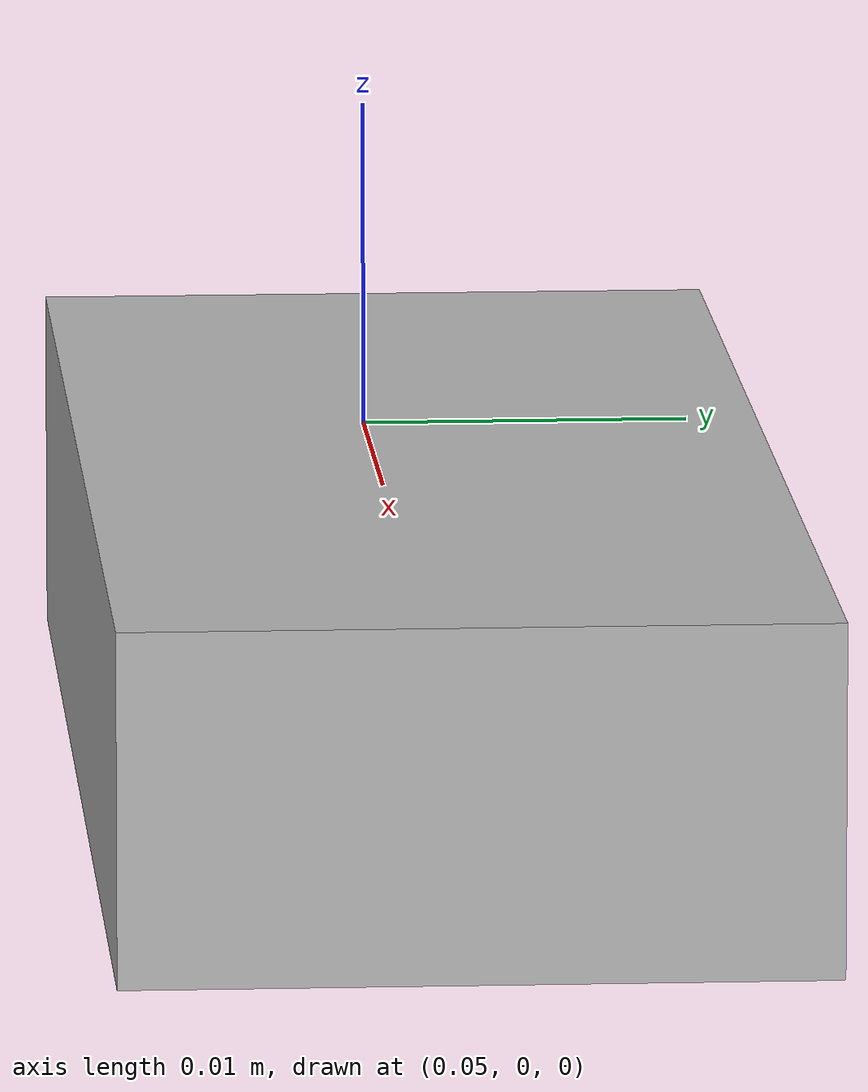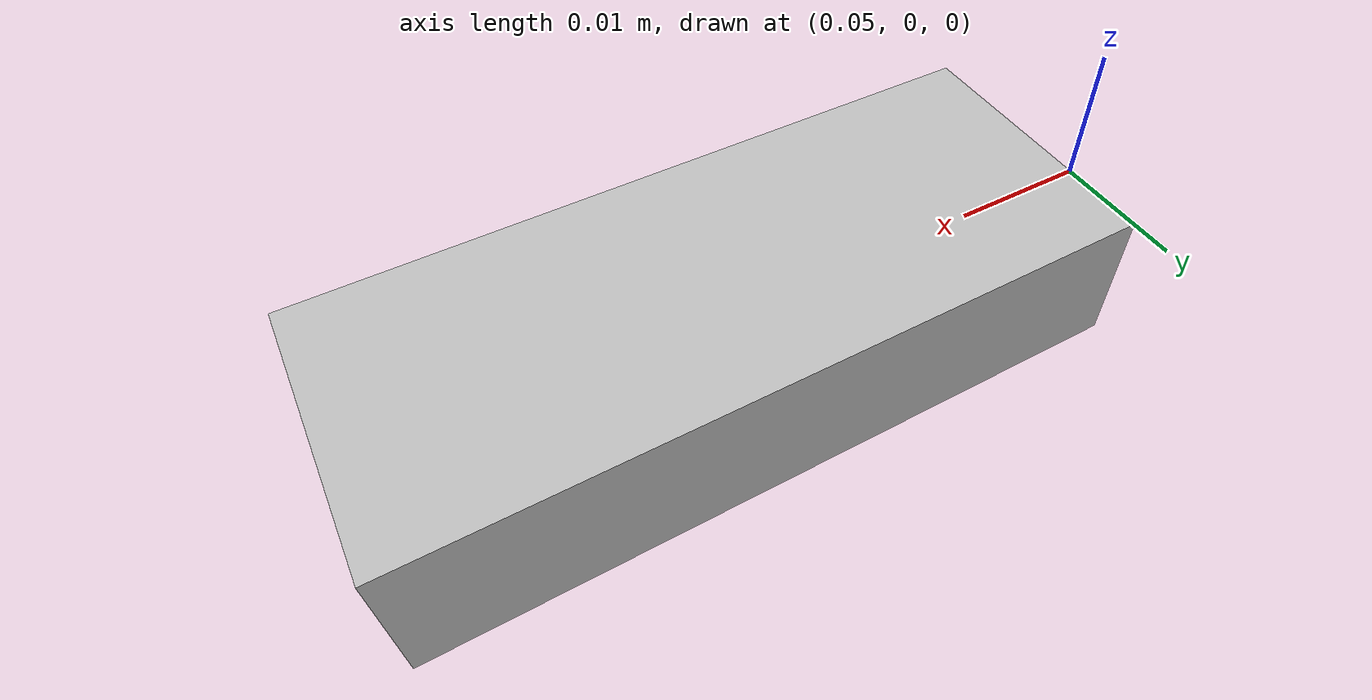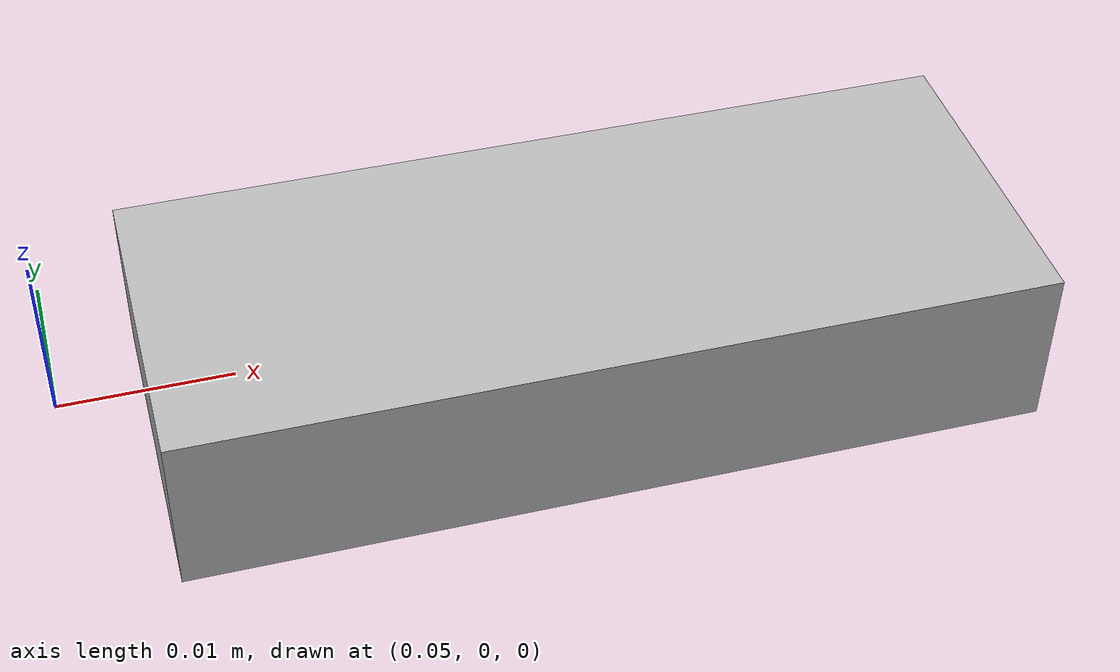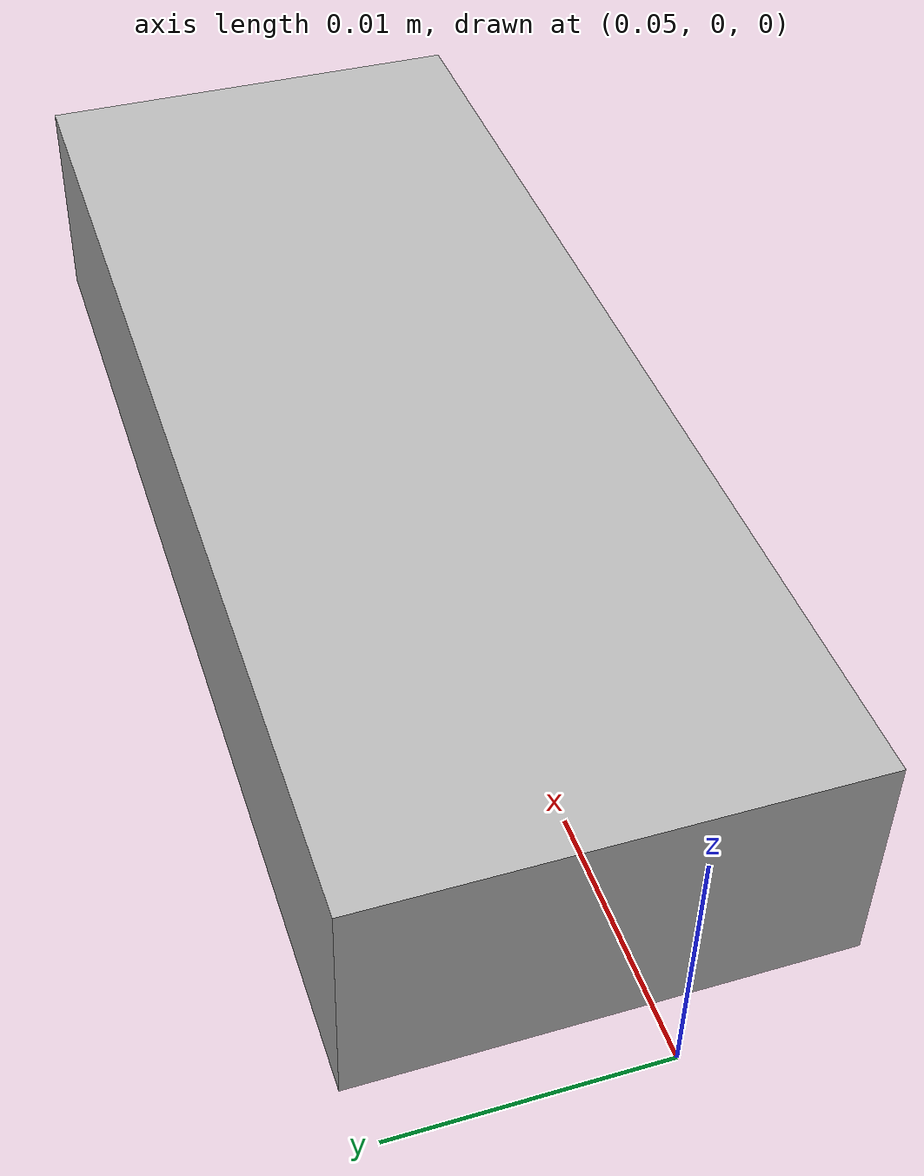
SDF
<?xml version="1.0" ?>
<sdf version="1.7" xmlns:drake="https://drake.mit.edu">
  <model name="peeler">
    <link name="peeler">
      <visual name="blade_visual">
        <pose>0.08 0 0  0 0 0</pose>
        <geometry>
          <box>
            <size> 0.05 0.02 0.01 </size>
          </box>
        </geometry>
      </visual>
      <inertial>
        <pose>0 0 0 0 0 0</pose>
        <mass>1</mass>
        <!-- TODO(eric.cousineau): Use better inertia. -->
        <inertia>
          <ixx> 0.1 </ixx>
          <ixy> 0 </ixy>
          <ixz> 0 </ixz>
          <iyy> 0.1 </iyy>
          <iyz> 0 </iyz>
          <izz> 0.1 </izz>
        </inertia>
      </inertial>
      <collision name="blade_collision">
        <pose>0.08 0 0  0 0 0</pose>
        <geometry>
          <box>
            <size> 0.05 0.02 0.01 </size>
          </box>
        </geometry>
        <!-- N.B. Naively estimated properties. -->
        <drake:proximity_properties>
          <drake:compliant_hydroelastic/>
          <drake:mu_dynamic>0.5</drake:mu_dynamic>
          <drake:mu_static>0.5</drake:mu_static>
          <drake:mesh_resolution_hint>0.005</drake:mesh_resolution_hint>
          <!--
          Using value for AISI 302 Steel
          (https://www.engineeringtoolbox.com/)
          -->
          <drake:hydroelastic_modulus>180.0e9</drake:hydroelastic_modulus>
          <drake:hunt_crossley_dissipation>1.25</drake:hunt_crossley_dissipation>
        </drake:proximity_properties>
      </collision>
    </link>
  </model>
</sdf>
